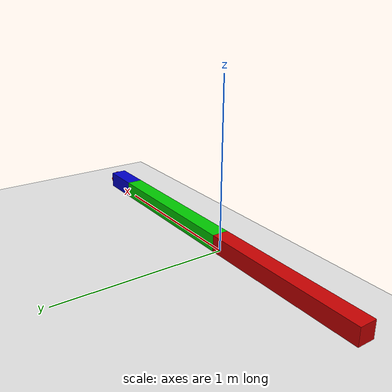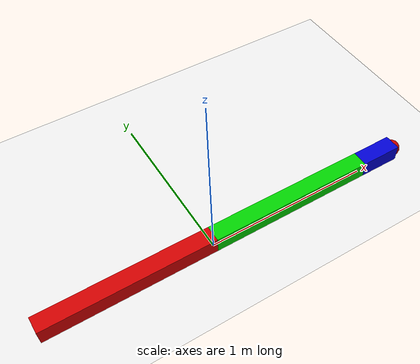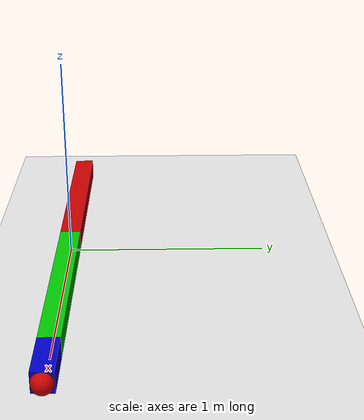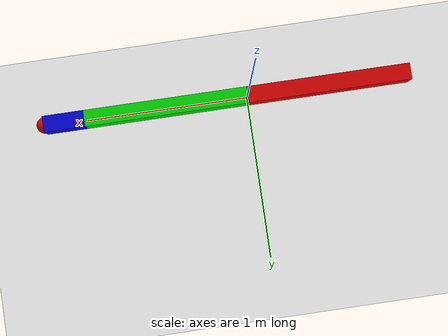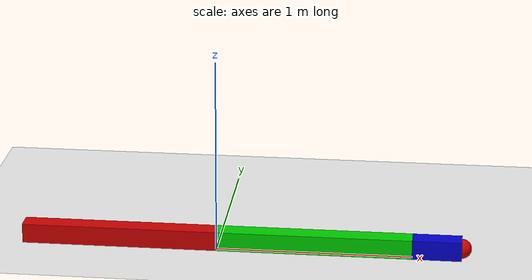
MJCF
<mujoco>
    <!-- gravity -->
    <option gravity="0 0 0" />
    <!-- main_body -->
    <worldbody>
        <!-- light source -->
        <light diffuse="0.5 0.5 0.5" pos="0 0 3" dir="0 0 -1" />
        <!-- plane -->
        <geom type="plane" size="2.5 2.5 0.1" rgba="0.9 0.9 0.9 1" />
        <!-- link_1 -->
        <body name="link_1" pos="-1 0 0.06">
            <inertial mass="1" fullinertia="1 1 0.1 0 0 0" pos="0.5 0 0" />
            <joint name="joint_1" type="hinge" pos="0 0 0" axis="0 0 1" />
            <geom type="box" pos="0.5 0 0" size="0.5 0.05 0.05" rgba="0.8 0 0 1" />
            <!-- link_2 -->
            <body name="link_2" pos="1 0 0">
                <inertial mass="0.0001" fullinertia="1 1 0.1 0 0 0" pos="0.5 0 0" />
                <joint name="joint_2" type="hinge" pos="0 0 0" axis="0 0 1" />
                <geom type="box" pos="0.5 0 0" size="0.5 0.05 0.05" rgba="0 0.8 0 1" />
                <!-- link_3 -->
                <body name="link_3" pos="1 0 0">
                    <inertial mass="0.2" fullinertia="0.1 0.1 0.02 0 0 0" pos="0.125 0 0" />
                    <joint name="joint_3" type="hinge" pos="0 0 0" axis="0 0 1" />
                    <geom type="box" pos="0.125 0 0" size="0.125 0.05 0.05" rgba="0 0 0.8 1" />
                    <!-- end_effector -->
                    <site name="end_effector" type="sphere" rgba="0.8 0 0 1" size="0.05 0.05 0.05" pos="0.25 0 0" />
                </body>
            </body>
        </body>
    </worldbody>
    <!-- sensor -->
    <sensor>
        <framelinvel name="link2_linvel" objtype="xbody" objname="link_2" />
        <frameangvel name="link2_angvel" objtype="xbody" objname="link_2" />
        <framelinvel name="site_linvel" objtype="site" objname="end_effector" />
        <frameangvel name="site_angvel" objtype="site" objname="end_effector" />
    </sensor>
    <!-- keyframe -->
    <keyframe>
        <key name="home" qpos="1.57 -1.57 1.57" qvel="0.2 -0.4 0.3"/>
    </keyframe>
</mujoco>
